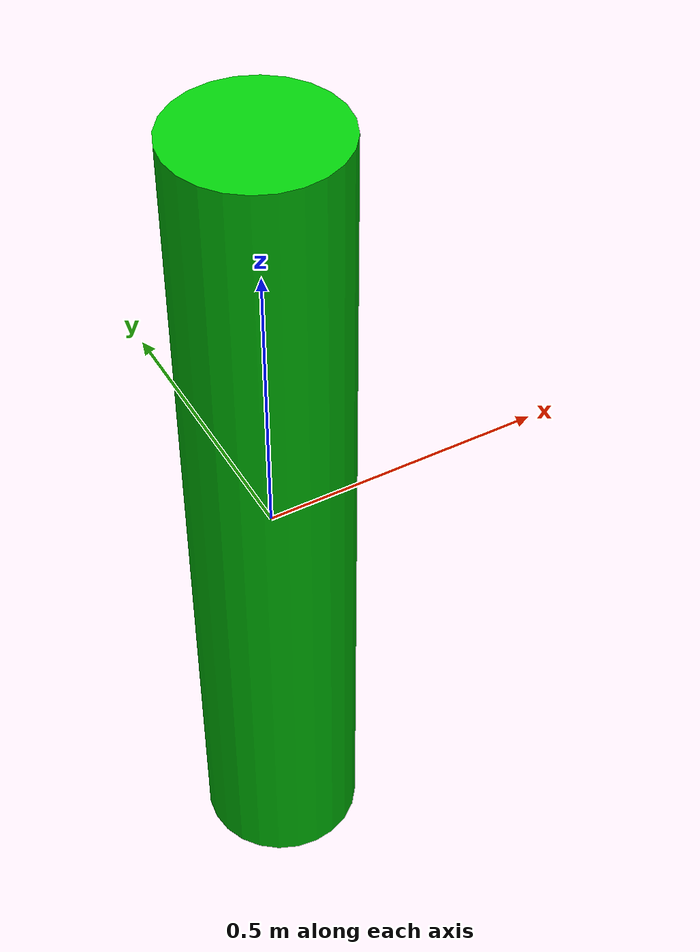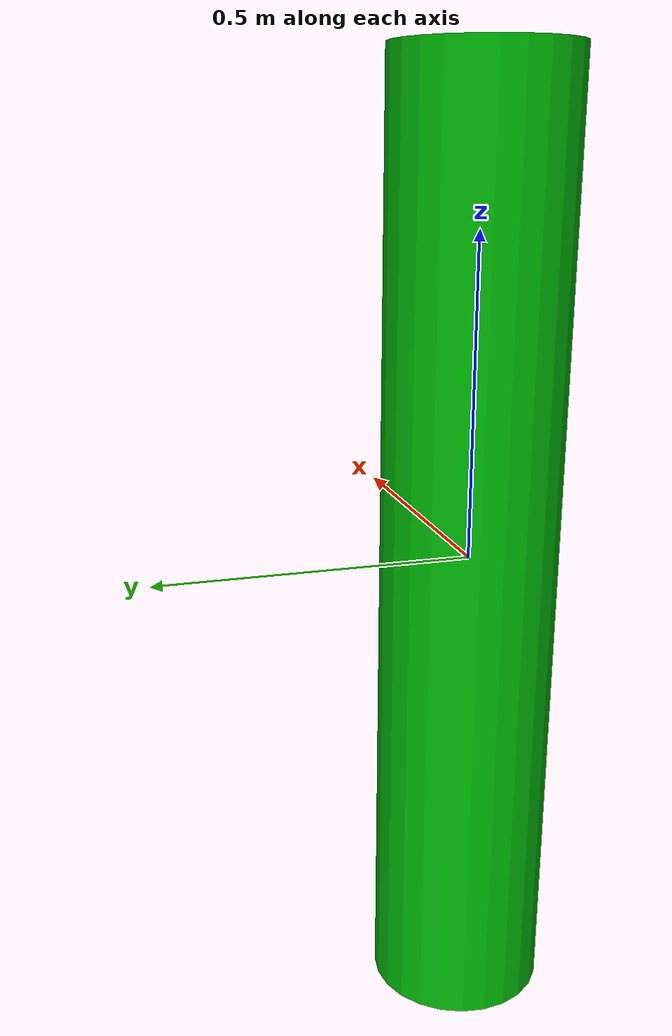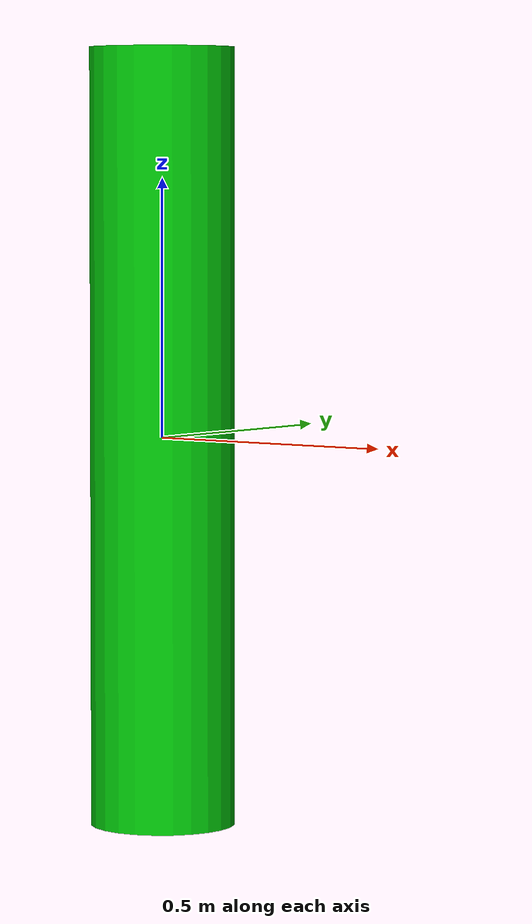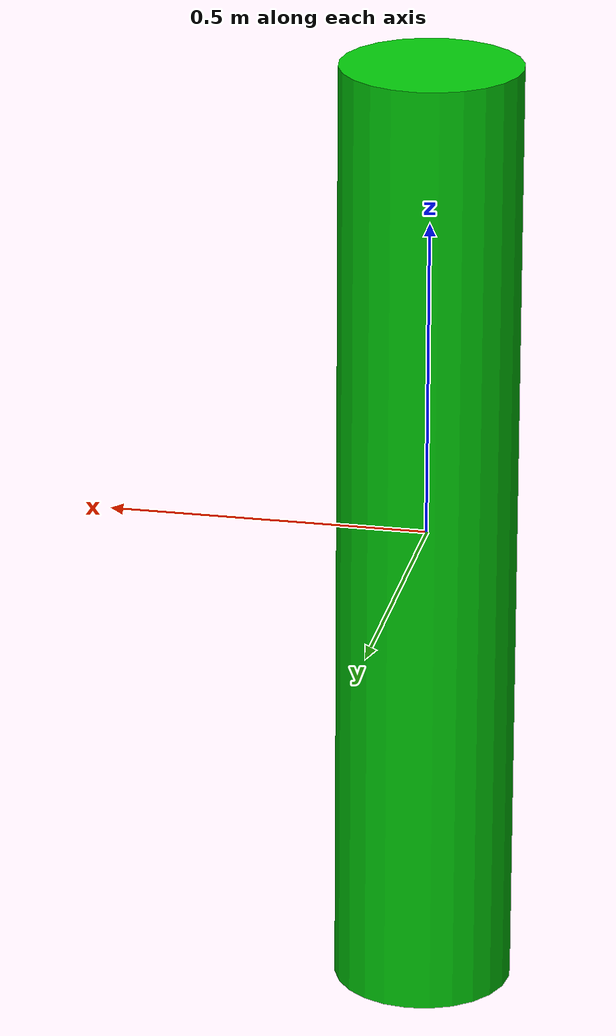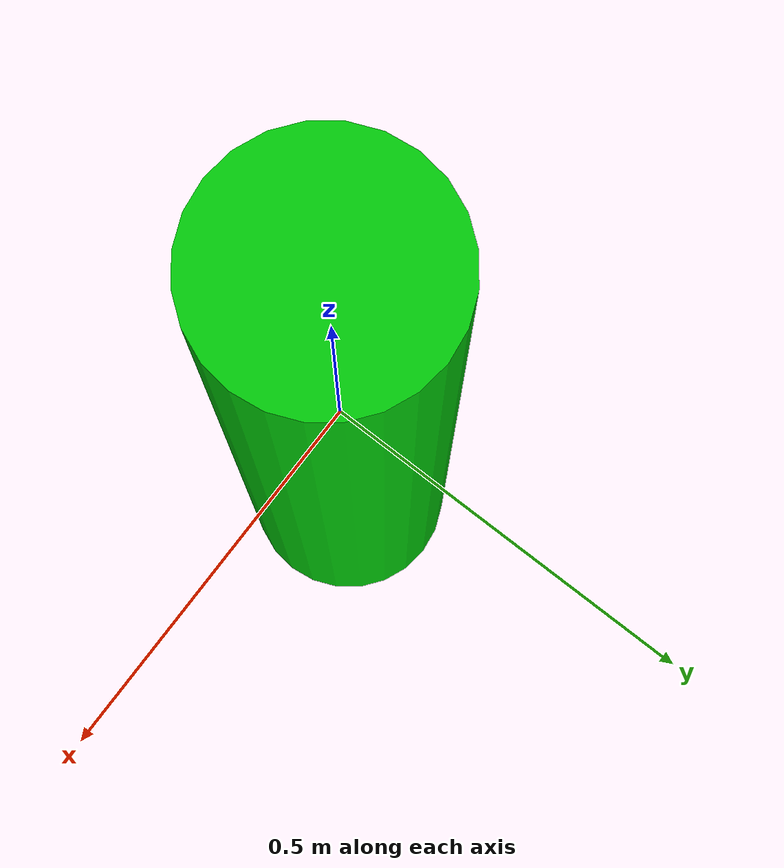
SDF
<?xml version="1.0" ?>
<sdf version="1.5">
  <model name="LaViRIA_cylinder_M">
    <link name="link">
      <inertial>
        <pose>0 0 0 0 0 0</pose>
        <mass>219.1464</mass>
        <inertia>
          <ixx>42.1512</ixx>
          <iyy>42.1512</iyy>
          <izz>2.124</izz>
          <ixy>0</ixy>
          <ixz>0</ixz>
        </inertia>
      </inertial>
      <collision name="collision">
        <geometry>
          <mesh>
            <uri>model://LaViRIA_cylinder_M/meshes/LaViRIA_cylinder_M.dae</uri>
          </mesh>
        </geometry>
      </collision>
      <visual name="visual">
        <geometry>
          <mesh>
            <uri>model://LaViRIA_cylinder_M/meshes/LaViRIA_cylinder_M.dae</uri>
          </mesh>
        </geometry>
        <material>
          <ambient>0.009 .799 0.04 1.0</ambient>
          <diffuse>0.009 .799 0.04 1.0</diffuse>
          <specular>0.009 .799 0.04 1.0</specular>
          <emissive>0.009 .799 0.04 1.0</emissive>
        </material>
      </visual>
    </link>
  </model>
</sdf>
